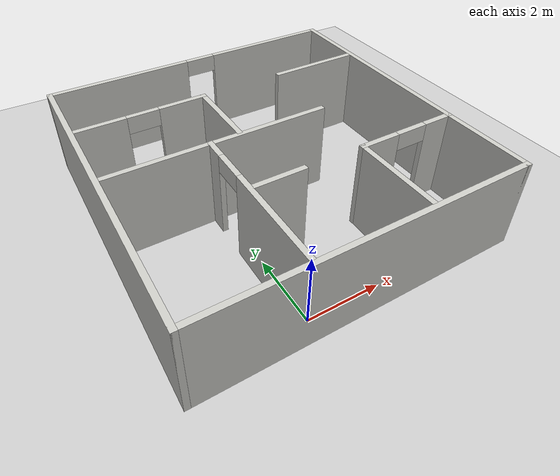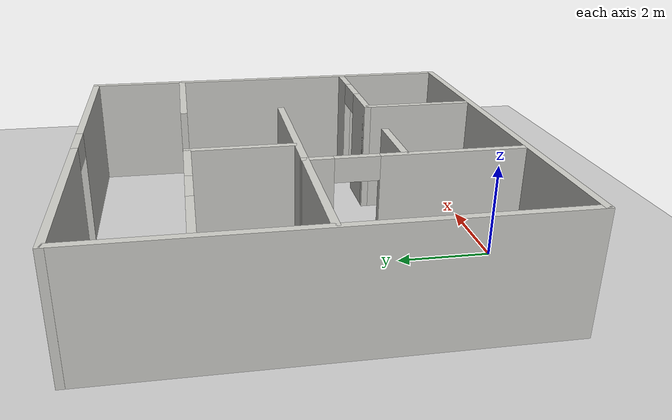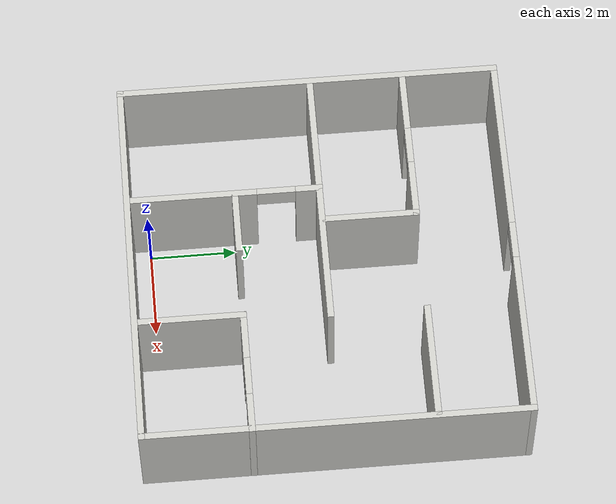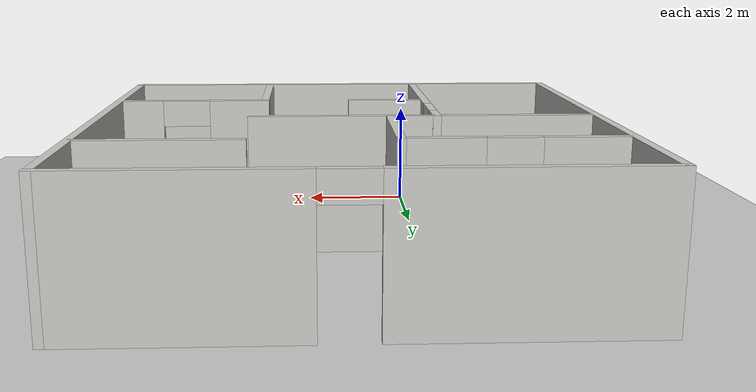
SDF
<sdf version="1.7">
 <world name="default">
  <light name="sun" type="directional">
   <pose>0 0 10 0 -0 0</pose>
   <diffuse>0.8 0.8 0.8 1</diffuse>
   <specular>0.2 0.2 0.2 1</specular>
   <attenuation>
    <range>1000</range>
    <constant>0.9</constant>
    <linear>0.01</linear>
    <quadratic>0.001</quadratic>
   </attenuation>
   <direction>-0.5 0.1 -0.9</direction>
   <spot><inner_angle>0</inner_angle><outer_angle>0</outer_angle><falloff>0</falloff></spot>
  </light>
  <model name="ground_plane">
   <static>1</static>
   <link name="link">
    <collision name="collision">
     <geometry><plane><normal>0 0 1</normal><size>100 100</size></plane></geometry>
     <surface>
      <contact><collide_bitmask>65535</collide_bitmask></contact>
      <friction><ode><mu>100</mu><mu2>50</mu2></ode></friction>
     </surface>
    </collision>
    <visual name="visual">
     <cast_shadows>0</cast_shadows>
     <geometry><plane><normal>0 0 1</normal><size>100 100</size></plane></geometry>
     <material>
      <script><uri>file://media/materials/scripts/gazebo.material</uri><name>Gazebo/Grey</name></script>
     </material>
    </visual>
   </link>
  </model>
  <gravity>0 0 -9.8</gravity>
  <magnetic_field>6e-06 2.3e-05 -4.2e-05</magnetic_field>
  <atmosphere type="adiabatic"/>
  <physics type="ode">
   <max_step_size>0.001</max_step_size>
   <real_time_factor>1</real_time_factor>
   <real_time_update_rate>1000</real_time_update_rate>
  </physics>
  <scene><ambient>0.4 0.4 0.4 1</ambient><background>0.7 0.7 0.7 1</background><shadows>1</shadows></scene>
  <audio><device>default</device></audio>
  <spherical_coordinates>
   <surface_model>EARTH_WGS84</surface_model>
   <latitude_deg>0</latitude_deg>
   <longitude_deg>0</longitude_deg>
   <elevation>0</elevation>
   <heading_deg>0</heading_deg>
  </spherical_coordinates>
  <model name="3.0">
   <pose>1.29644 3.975 0 0 -0 0</pose>
   <link name="Wall_0">
    <collision name="Wall_0_Collision">
     <geometry><box><size>9 0.15 2.5</size></box></geometry>
     <pose>0 0 1.25 0 -0 0</pose>
    </collision>
    <visual name="Wall_0_Visual">
     <pose>0 0 1.25 0 -0 0</pose>
     <geometry><box><size>9 0.15 2.5</size></box></geometry>
     <material>
      <script><uri>file://media/materials/scripts/gazebo.material</uri><name>Gazebo/CeilingTiled</name></script>
      <ambient>0.435294 0.796078 0.67451 1</ambient>
     </material>
     <meta><layer>0</layer></meta>
    </visual>
    <pose>-0.00144 -4.425 0 0 -0 0</pose>
   </link>
   <link name="Wall_1">
    <collision name="Wall_1_Collision">
     <geometry><box><size>9 0.15 2.5</size></box></geometry>
     <pose>0 0 1.25 0 -0 0</pose>
    </collision>
    <visual name="Wall_1_Visual">
     <pose>0 0 1.25 0 -0 0</pose>
     <geometry><box><size>9 0.15 2.5</size></box></geometry>
     <material>
      <script><uri>file://media/materials/scripts/gazebo.material</uri><name>Gazebo/CeilingTiled</name></script>
      <ambient>0.435294 0.796078 0.67451 1</ambient>
     </material>
     <meta><layer>0</layer></meta>
    </visual>
    <pose>4.42356 0 0 0 -0 1.5708</pose>
   </link>
   <link name="Wall_11">
    <collision name="Wall_11_Collision">
     <geometry><box><size>2.75 0.15 2.5</size></box></geometry>
     <pose>0 0 1.25 0 -0 0</pose>
    </collision>
    <visual name="Wall_11_Visual">
     <pose>0 0 1.25 0 -0 0</pose>
     <geometry><box><size>2.75 0.15 2.5</size></box></geometry>
     <material>
      <script><uri>file://media/materials/scripts/gazebo.material</uri><name>Gazebo/CeilingTiled</name></script>
      <ambient>0.435294 0.796078 0.67451 1</ambient>
     </material>
     <meta><layer>0</layer></meta>
    </visual>
    <pose>3.05126 2.2684 0 0 -0 3.14159</pose>
   </link>
   <link name="Wall_2">
    <pose>-0.00144 4.425 0 0 -0 3.14159</pose>
    <visual name="Wall_2_Visual_0">
     <pose>-2.55504 0 1.25 0 -0 0</pose>
     <geometry><box><size>3.88992 0.15 2.5</size></box></geometry>
     <material>
      <script><uri>file://media/materials/scripts/gazebo.material</uri><name>Gazebo/CeilingTiled</name></script>
      <ambient>0.435294 0.796078 0.67451 1</ambient>
     </material>
     <meta><layer>0</layer></meta>
    </visual>
    <collision name="Wall_2_Collision_0">
     <geometry><box><size>3.88992 0.15 2.5</size></box></geometry>
     <pose>-2.55504 0 1.25 0 -0 0</pose>
    </collision>
    <visual name="Wall_2_Visual_1">
     <pose>2.39496 0 1.25 0 -0 0</pose>
     <geometry><box><size>4.21008 0.15 2.5</size></box></geometry>
     <material>
      <script><uri>file://media/materials/scripts/gazebo.material</uri><name>Gazebo/CeilingTiled</name></script>
      <ambient>0.435294 0.796078 0.67451 1</ambient>
     </material>
     <meta><layer>0</layer></meta>
    </visual>
    <collision name="Wall_2_Collision_1">
     <geometry><box><size>4.21008 0.15 2.5</size></box></geometry>
     <pose>2.39496 0 1.25 0 -0 0</pose>
    </collision>
    <visual name="Wall_2_Visual_2">
     <pose>-0.160079 0 2.25 0 -0 0</pose>
     <geometry><box><size>0.9 0.15 0.5</size></box></geometry>
     <material>
      <script><uri>file://media/materials/scripts/gazebo.material</uri><name>Gazebo/CeilingTiled</name></script>
      <ambient>0.435294 0.796078 0.67451 1</ambient>
     </material>
     <meta><layer>0</layer></meta>
    </visual>
    <collision name="Wall_2_Collision_2">
     <geometry><box><size>0.9 0.15 0.5</size></box></geometry>
     <pose>-0.160079 0 2.25 0 -0 0</pose>
    </collision>
   </link>
   <link name="Wall_23">
    <collision name="Wall_23_Collision">
     <geometry><box><size>2.25 0.15 2.5</size></box></geometry>
     <pose>0 0 1.25 0 -0 0</pose>
    </collision>
    <visual name="Wall_23_Visual">
     <pose>0 0 1.25 0 -0 0</pose>
     <geometry><box><size>2.25 0.15 2.5</size></box></geometry>
     <material>
      <script><uri>file://media/materials/scripts/gazebo.material</uri><name>Gazebo/CeilingTiled</name></script>
      <ambient>0.435294 0.796078 0.67451 1</ambient>
     </material>
     <meta><layer>0</layer></meta>
    </visual>
    <pose>-0.728656 1.19553 0 0 -0 1.5708</pose>
   </link>
   <link name="Wall_24">
    <pose>-2.52866 2.24553 0 0 -0 3.14159</pose>
    <visual name="Wall_24_Visual_0">
     <pose>-1.16935 0 1.25 0 -0 0</pose>
     <geometry><box><size>1.41129 0.15 2.5</size></box></geometry>
     <material>
      <script><uri>file://media/materials/scripts/gazebo.material</uri><name>Gazebo/CeilingTiled</name></script>
      <ambient>0.435294 0.796078 0.67451 1</ambient>
     </material>
     <meta><layer>0</layer></meta>
    </visual>
    <collision name="Wall_24_Collision_0">
     <geometry><box><size>1.41129 0.15 2.5</size></box></geometry>
     <pose>-1.16935 0 1.25 0 -0 0</pose>
    </collision>
    <visual name="Wall_24_Visual_1">
     <pose>1.15565 0 1.25 0 -0 0</pose>
     <geometry><box><size>1.43871 0.15 2.5</size></box></geometry>
     <material>
      <script><uri>file://media/materials/scripts/gazebo.material</uri><name>Gazebo/CeilingTiled</name></script>
      <ambient>0.435294 0.796078 0.67451 1</ambient>
     </material>
     <meta><layer>0</layer></meta>
    </visual>
    <collision name="Wall_24_Collision_1">
     <geometry><box><size>1.43871 0.15 2.5</size></box></geometry>
     <pose>1.15565 0 1.25 0 -0 0</pose>
    </collision>
    <visual name="Wall_24_Visual_2">
     <pose>-0.013709 0 2.25 0 -0 0</pose>
     <geometry><box><size>0.9 0.15 0.5</size></box></geometry>
     <material>
      <script><uri>file://media/materials/scripts/gazebo.material</uri><name>Gazebo/CeilingTiled</name></script>
      <ambient>0.435294 0.796078 0.67451 1</ambient>
     </material>
     <meta><layer>0</layer></meta>
    </visual>
    <collision name="Wall_24_Collision_2">
     <geometry><box><size>0.9 0.15 0.5</size></box></geometry>
     <pose>-0.013709 0 2.25 0 -0 0</pose>
    </collision>
   </link>
   <link name="Wall_26">
    <pose>-1.56238 -2.11378 0 0 -0 -1.5708</pose>
    <visual name="Wall_26_Visual_0">
     <pose>-1.93185 0 1.25 0 -0 0</pose>
     <geometry><box><size>0.636297 0.15 2.5</size></box></geometry>
     <material>
      <script><uri>file://media/materials/scripts/gazebo.material</uri><name>Gazebo/CeilingTiled</name></script>
      <ambient>0.435294 0.796078 0.67451 1</ambient>
     </material>
     <meta><layer>0</layer></meta>
    </visual>
    <collision name="Wall_26_Collision_0">
     <geometry><box><size>0.636297 0.15 2.5</size></box></geometry>
     <pose>-1.93185 0 1.25 0 -0 0</pose>
    </collision>
    <visual name="Wall_26_Visual_1">
     <pose>0.768148 0 1.25 0 -0 0</pose>
     <geometry><box><size>2.9637 0.15 2.5</size></box></geometry>
     <material>
      <script><uri>file://media/materials/scripts/gazebo.material</uri><name>Gazebo/CeilingTiled</name></script>
      <ambient>0.435294 0.796078 0.67451 1</ambient>
     </material>
     <meta><layer>0</layer></meta>
    </visual>
    <collision name="Wall_26_Collision_1">
     <geometry><box><size>2.9637 0.15 2.5</size></box></geometry>
     <pose>0.768148 0 1.25 0 -0 0</pose>
    </collision>
    <visual name="Wall_26_Visual_2">
     <pose>-1.1637 0 2.25 0 -0 0</pose>
     <geometry><box><size>0.9 0.15 0.5</size></box></geometry>
     <material>
      <script><uri>file://media/materials/scripts/gazebo.material</uri><name>Gazebo/CeilingTiled</name></script>
      <ambient>0.435294 0.796078 0.67451 1</ambient>
     </material>
     <meta><layer>0</layer></meta>
    </visual>
    <collision name="Wall_26_Collision_2">
     <geometry><box><size>0.9 0.15 0.5</size></box></geometry>
     <pose>-1.1637 0 2.25 0 -0 0</pose>
    </collision>
   </link>
   <link name="Wall_29">
    <pose>3.00144 -1.93379 0 0 -0 0</pose>
    <visual name="Wall_29_Visual_0">
     <pose>-0.918893 0 1.25 0 -0 0</pose>
     <geometry><box><size>1.16221 0.15 2.5</size></box></geometry>
     <material>
      <script><uri>file://media/materials/scripts/gazebo.material</uri><name>Gazebo/CeilingTiled</name></script>
      <ambient>0.435294 0.796078 0.67451 1</ambient>
     </material>
     <meta><layer>0</layer></meta>
    </visual>
    <collision name="Wall_29_Collision_0">
     <geometry><box><size>1.16221 0.15 2.5</size></box></geometry>
     <pose>-0.918893 0 1.25 0 -0 0</pose>
    </collision>
    <visual name="Wall_29_Visual_1">
     <pose>1.03111 0 1.25 0 -0 0</pose>
     <geometry><box><size>0.937786 0.15 2.5</size></box></geometry>
     <material>
      <script><uri>file://media/materials/scripts/gazebo.material</uri><name>Gazebo/CeilingTiled</name></script>
      <ambient>0.435294 0.796078 0.67451 1</ambient>
     </material>
     <meta><layer>0</layer></meta>
    </visual>
    <collision name="Wall_29_Collision_1">
     <geometry><box><size>0.937786 0.15 2.5</size></box></geometry>
     <pose>1.03111 0 1.25 0 -0 0</pose>
    </collision>
    <visual name="Wall_29_Visual_2">
     <pose>0.112214 0 2.25 0 -0 0</pose>
     <geometry><box><size>0.9 0.15 0.5</size></box></geometry>
     <material>
      <script><uri>file://media/materials/scripts/gazebo.material</uri><name>Gazebo/CeilingTiled</name></script>
      <ambient>0.435294 0.796078 0.67451 1</ambient>
     </material>
     <meta><layer>0</layer></meta>
    </visual>
    <collision name="Wall_29_Collision_2">
     <geometry><box><size>0.9 0.15 0.5</size></box></geometry>
     <pose>0.112214 0 2.25 0 -0 0</pose>
    </collision>
   </link>
   <link name="Wall_3">
    <collision name="Wall_3_Collision">
     <geometry><box><size>9 0.15 2.5</size></box></geometry>
     <pose>0 0 1.25 0 -0 0</pose>
    </collision>
    <visual name="Wall_3_Visual">
     <pose>0 0 1.25 0 -0 0</pose>
     <geometry><box><size>9 0.15 2.5</size></box></geometry>
     <material>
      <script><uri>file://media/materials/scripts/gazebo.material</uri><name>Gazebo/CeilingTiled</name></script>
      <ambient>0.435294 0.796078 0.67451 1</ambient>
     </material>
     <meta><layer>0</layer></meta>
    </visual>
    <pose>-4.42644 0 0 0 -0 -1.5708</pose>
   </link>
   <link name="Wall_31">
    <collision name="Wall_31_Collision">
     <geometry><box><size>2.5 0.15 2.5</size></box></geometry>
     <pose>0 0 1.25 0 -0 0</pose>
    </collision>
    <visual name="Wall_31_Visual">
     <pose>0 0 1.25 0 -0 0</pose>
     <geometry><box><size>2.5 0.15 2.5</size></box></geometry>
     <material>
      <script><uri>file://media/materials/scripts/gazebo.material</uri><name>Gazebo/CeilingTiled</name></script>
      <ambient>0.435294 0.796078 0.67451 1</ambient>
     </material>
     <meta><layer>0</layer></meta>
    </visual>
    <pose>1.57644 -3.10879 0 0 -0 -1.5708</pose>
   </link>
   <link name="Wall_34">
    <collision name="Wall_34_Collision">
     <geometry><box><size>1.5 0.15 2.5</size></box></geometry>
     <pose>0 0 1.25 0 -0 0</pose>
    </collision>
    <visual name="Wall_34_Visual">
     <pose>0 0 1.25 0 -0 0</pose>
     <geometry><box><size>1.5 0.15 2.5</size></box></geometry>
     <material>
      <script><uri>file://media/materials/scripts/gazebo.material</uri><name>Gazebo/CeilingTiled</name></script>
      <ambient>0.435294 0.796078 0.67451 1</ambient>
     </material>
     <meta><layer>0</layer></meta>
    </visual>
    <pose>-0.807582 -1.90719 0 0 -0 0</pose>
   </link>
   <link name="Wall_8">
    <collision name="Wall_8_Collision">
     <geometry><box><size>6.25 0.15 2.5</size></box></geometry>
     <pose>0 0 1.25 0 -0 0</pose>
    </collision>
    <visual name="Wall_8_Visual">
     <pose>0 0 1.25 0 -0 0</pose>
     <geometry><box><size>6.25 0.15 2.5</size></box></geometry>
     <material>
      <script><uri>file://media/materials/scripts/gazebo.material</uri><name>Gazebo/CeilingTiled</name></script>
      <ambient>0.435294 0.796078 0.67451 1</ambient>
     </material>
     <meta><layer>0</layer></meta>
    </visual>
    <pose>-1.32803 0.05591 0 0 -0 0</pose>
   </link>
   <static>1</static>
  </model>
 </world>
</sdf>
